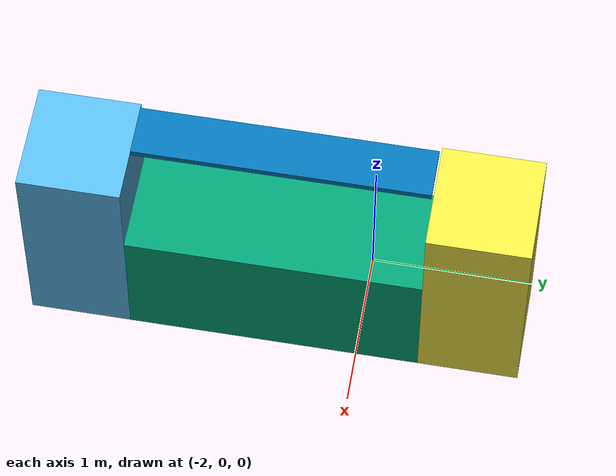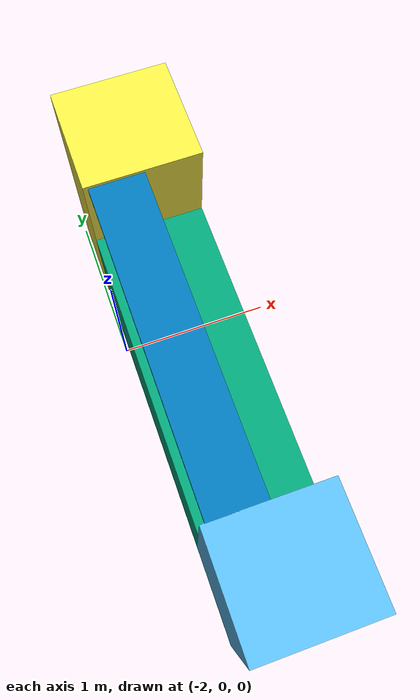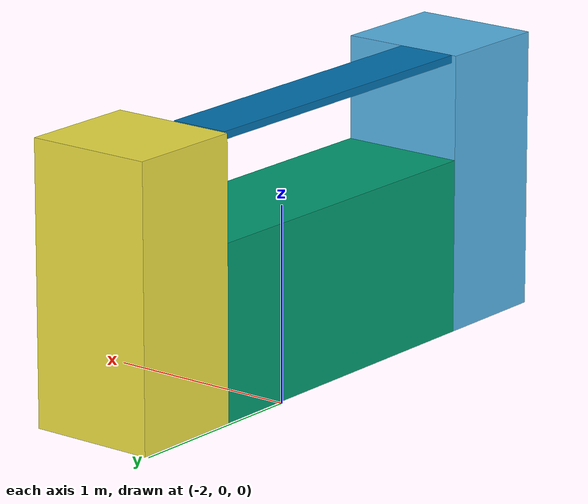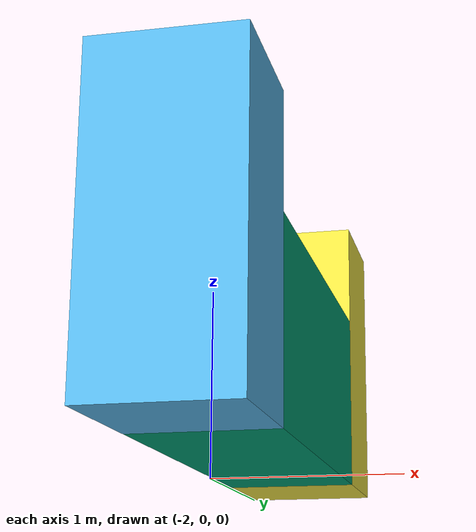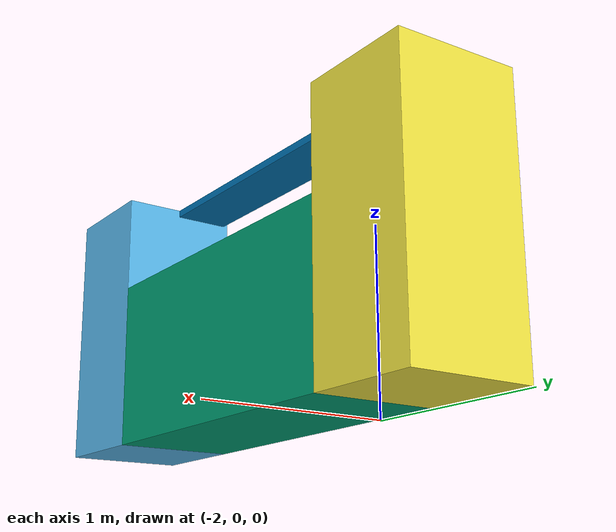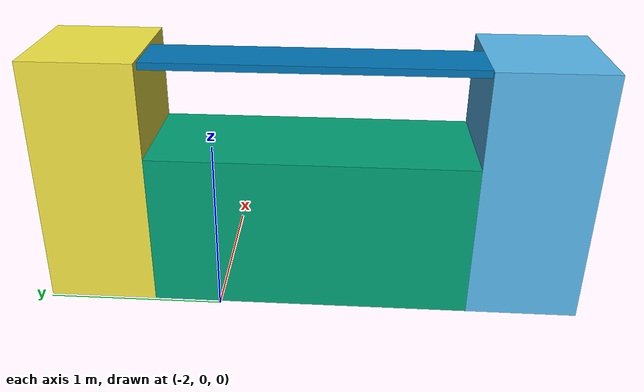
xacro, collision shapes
<?xml version="1.0"?>
<robot name="kitchen" static="true"
       xmlns:xacro="http://www.ros.org/wiki/xacro"
       xmlns:xi="http://www.w3.org/2001/XInclude"
       xmlns:gazebo="http://playerstage.sourceforge.net/gazebo/xmlschema/#gz"
       xmlns:model="http://playerstage.sourceforge.net/gazebo/xmlschema/#model"
       xmlns:sensor="http://playerstage.sourceforge.net/gazebo/xmlschema/#sensor"
       xmlns:body="http://playerstage.sourceforge.net/gazebo/xmlschema/#body"
       xmlns:geom="http://playerstage.sourceforge.net/gazebo/xmlschema/#geom"
       xmlns:joint="http://playerstage.sourceforge.net/gazebo/xmlschema/#joint"
       xmlns:interface="http://playerstage.sourceforge.net/gazebo/xmlschema/#interface"
       xmlns:rendering="http://playerstage.sourceforge.net/gazebo/xmlschema/#rendering"
       xmlns:renderable="http://playerstage.sourceforge.net/gazebo/xmlschema/#renderable"
       xmlns:controller="http://playerstage.sourceforge.net/gazebo/xmlschema/#controller"
       xmlns:physics="http://playerstage.sourceforge.net/gazebo/xmlschema/#physics">

  <xacro:property name="dist_axis_x" value="1.969" />
  <xacro:property name="dist_axis_y" value="4.070" />
  <xacro:property name="size_total_x" value="8.0" />
  <xacro:property name="size_total_y" value="11.2" />
  <xacro:property name="wall_depth" value="0.1" />

  <link name="kitchen_link">
  </link>

  <!-- kitchen_left -->
  <link name="kitchen_left">
    <inertial>
      <mass value="50.0" />
      <origin xyz="0.0 0.0 0.0" />
       <inertia  ixx="20.0" ixy="5.0"  ixz="5.0"  iyy="20.0"  iyz="5.0"  izz="100.0" />
    </inertial>
    <visual>
      <origin xyz="0 0 0" />
      <geometry>
        <mesh filename="package://cob_gazebo_worlds/Media/materials/textures/kitchen_right.dae" />
      </geometry>
    </visual>
    <collision>
      <origin xyz="0 0 0" />
      <geometry>
        <box size="0.66 0.62 1.44" />
      </geometry>
    </collision>
  </link>

  <joint name="joint_kitchen_left" type="fixed">
    <origin xyz="${-size_total_x/2+dist_axis_x+wall_depth+0.28} ${size_total_y/4-0.455-dist_axis_y} 0.720" rpy="0 0 0" />
    <parent link="kitchen_link" />
    <child link="kitchen_left" />
  </joint>

  <!-- kitchen_middle -->
  <link name="kitchen_middle">
    <inertial>
      <mass value="50.0" />
      <origin xyz="0.0 0.0 0.0" />
       <inertia  ixx="20.0" ixy="5.0"  ixz="5.0"  iyy="20.0"  iyz="5.0"  izz="100.0" />
    </inertial>
    <visual>
      <origin xyz="0 0 0" />
      <geometry>
        <mesh filename="package://cob_gazebo_worlds/Media/materials/textures/kitchen_middle.dae" />
      </geometry>
    </visual>
    <collision>
      <origin xyz="0 0 0" />
      <geometry>
        <box size="0.66 1.80 0.90" />
      </geometry>
    </collision>
  </link>

  <joint name="joint_kitchen_middle" type="fixed">
    <origin xyz="${-size_total_x/2+dist_axis_x+wall_depth+0.28} ${size_total_y/4+0.755-dist_axis_y} 0.450" rpy="0 0 0" />
    <parent link="kitchen_link" />
    <child link="kitchen_middle" />
  </joint>

  <!-- kitchen_right -->
  <link name="kitchen_right">
    <inertial>
      <mass value="50.0" />
      <origin xyz="0.0 0.0 0.0" />
       <inertia  ixx="20.0" ixy="5.0"  ixz="5.0"  iyy="20.0"  iyz="5.0"  izz="100.0" />
    </inertial>
    <visual>
      <origin xyz="0 0 0" />
      <geometry>
        <mesh filename="package://cob_gazebo_worlds/Media/materials/textures/kitchen_left.dae" />
      </geometry>
    </visual>
    <collision>
      <origin xyz="0 0 0" />
      <geometry>
        <box size="0.66 0.62 1.44" />
      </geometry>
    </collision>
  </link>

  <joint name="joint_kitchen_right" type="fixed">
    <origin xyz="${-size_total_x/2+dist_axis_x+wall_depth+0.28} ${size_total_y/4+1.965-dist_axis_y} 0.720" rpy="0 0 0" />
    <parent link="kitchen_link" />
    <child link="kitchen_right" />
  </joint>

  <link name="planck_link">
    <inertial>
      <mass value="50.0" />
      <origin xyz="0.0 0.0 0.0" />
       <inertia  ixx="20.0" ixy="5.0"  ixz="5.0"  iyy="20.0"  iyz="5.0"  izz="100.0" />
    </inertial>
    <visual>
      <origin xyz="0 0 0.0" rpy="0 0 0" />
      <geometry>
        <mesh filename="package://cob_gazebo_worlds/Media/models/kitchen_plank.dae"/>
      </geometry>
    </visual>
    <collision>
      <origin xyz="0 0.118 0.02" />
      <geometry>
        <box size="0.31 1.79 0.04" />
      </geometry>
    </collision>
  </link>

  <joint name="joint_planck_link" type="fixed">
    <origin xyz="-1.8 -0.64 1.40" rpy="0 0 0" />
    <parent link="kitchen_link" />
    <child link="planck_link" />
  </joint>

  <gazebo reference="kitchen_link">
    <static>true</static>
  </gazebo>
  <gazebo reference="kitchen_left">
    <static>true</static>
  </gazebo>
  <gazebo reference="kitchen_middle">
    <static>true</static>
  </gazebo>
  <gazebo reference="kitchen_right">
    <static>true</static>
  </gazebo>
  <gazebo reference="planck_link">
    <static>true</static>
  </gazebo>
</robot>
